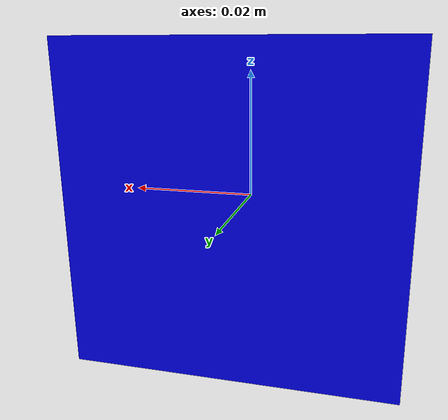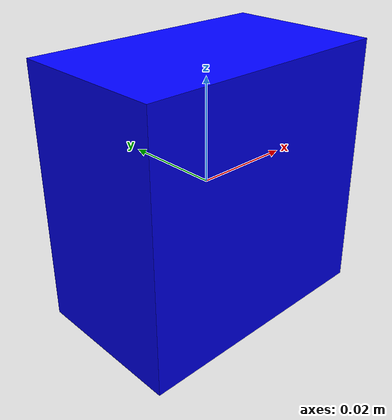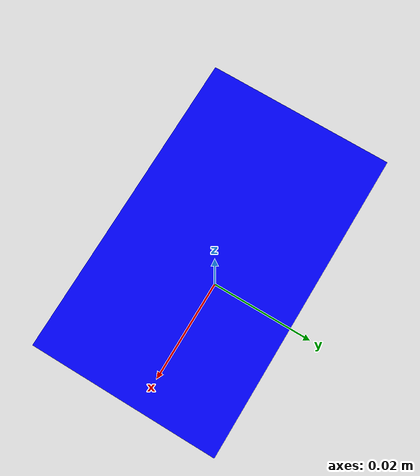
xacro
<?xml version="1.0"?>
<robot name="camera_robot">

  <!-- Properties -->
  <property name="camera_width" value="0.05"/>
  <property name="camera_height" value="0.03"/>
  <property name="camera_depth" value="0.05"/>

  <!-- Dummy Link -->

  <!-- Dummy Joint -->

  <!-- Camera Link Definition -->
  <link name="camera_link">
    <visual>
      <geometry>
        <box size="${camera_width} ${camera_height} ${camera_depth}"/>
      </geometry>
      <material name="blue">
        <color rgba="0 0 1 1.0"/>
      </material>
    </visual>
    <collision>
      <geometry>
        <box size="${camera_width} ${camera_height} ${camera_depth}"/>
      </geometry>
    </collision>
    <inertial>
      <mass value="0.1"/>
      <inertia ixx="0.0001" ixy="0" ixz="0" iyy="0.0001" iyz="0" izz="0.0001"/>
    </inertial>
  </link>

  <!-- Gazebo plugins -->
  <gazebo reference="camera_link">
    <gravity>0</gravity>
    <sensor type="depth" name="depth_camera_sensor">
      <update_rate>30.0</update_rate>
      <camera>
        <horizontal_fov>1.01960784314</horizontal_fov>
        <image>
          <width>520</width>
          <height>510</height>
          <format>R8G8B8</format>
        </image>
        <clip>
          <near>0.2</near>
          <far>1.24</far>
        </clip>
      </camera>
      <plugin name="depth_camera_controller" filename="libgazebo_ros_depth_camera.so">
        <alwaysOn>true</alwaysOn>
        <updateRate>0.0</updateRate>
        <cameraName>robot/depth_camera</cameraName>
        <imageTopicName>depth_image_raw</imageTopicName>
        <cameraInfoTopicName>depth_camera_info</cameraInfoTopicName>
        <frameName>camera_link</frameName>
      </plugin>
      <visualize>true</visualize>
    </sensor>

    <sensor type="camera" name="visualize_camera_sensor">

      <update_rate>30.0</update_rate>
      <camera>
        <horizontal_fov>1.01960784314</horizontal_fov>
        <image>
          <width>520</width>
          <height>510</height>
          <format>R8G8B8</format>
        </image>
        <clip>
          <near>0.2</near>
          <far>1.24</far>
        </clip>
      </camera>
      <visualize>true</visualize>
    </sensor>
  </gazebo>

</robot>
